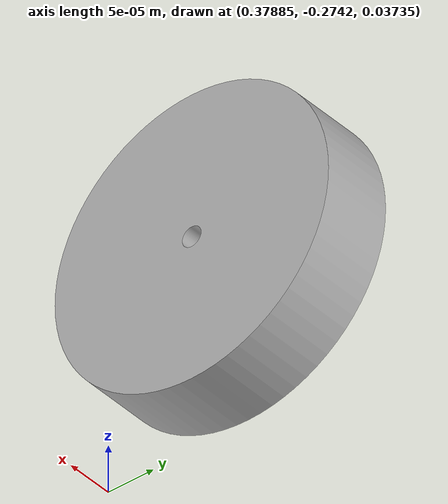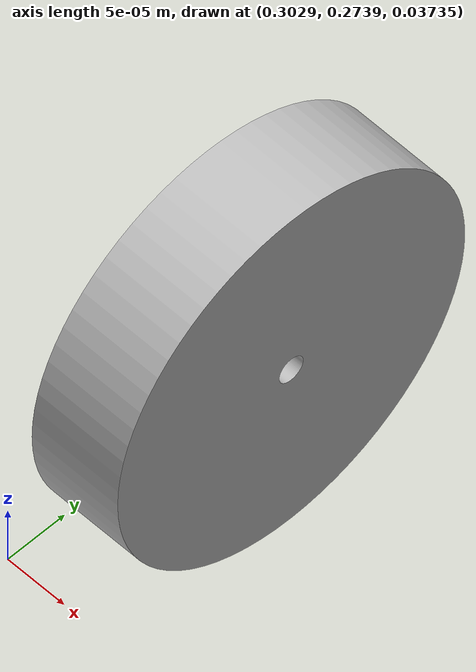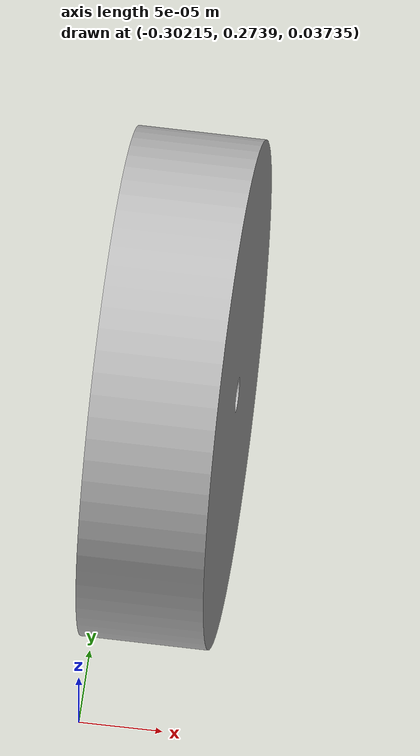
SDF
<?xml version="1.0"?>

<sdf version='1.7'>
  <model name='rover'>
    <link name='wheel_1'>
      <inertial>
        <pose>0 0 0 0 -0 0</pose>
        <mass>0.00629423</mass>
        <inertia>
          <ixx>3.792</ixx>
          <ixy>0</ixy>
          <ixz>0</ixz>
          <iyy>3.792</iyy>
          <iyz>0</iyz>
          <izz>7.071</izz>
        </inertia>
      </inertial>
      <collision name='wheel_1_collision'>
        <pose>-0.302073 -0.274046 0.0375 -1.5708 -1.5708 0</pose>
        <geometry>
          <mesh>
            <scale>0.001 0.001 0.001</scale>
            <uri>model://my_simulations/urdf/wheel_1.stl</uri>
          </mesh>
        </geometry>
      </collision>
      <visual name='wheel_1_visual'>
        <pose>-0.302073 -0.274046 0.0375 -1.5708 -1.5708 0</pose>
        <geometry>
          <mesh>
            <scale>0.001 0.001 0.001</scale>
            <uri>model://my_simulations/urdf/wheel_1.stl</uri>
          </mesh>
        </geometry>
      </visual>
    </link>
    <joint name='wheel4' type='revolute'>
      <pose relative_to='wheel_1'>-0.327073 -0.274046 0.0375 -1.5708 0 1.5708</pose>
      <parent>wheel_1</parent>
      <child>base</child>
      <axis>
        <xyz>0 0 1</xyz>
        <limit>
          <effort>1</effort>
          <velocity>20</velocity>
          <lower>-1e+16</lower>
          <upper>1e+16</upper>
        </limit>
        <dynamics>
          <spring_reference>0</spring_reference>
          <spring_stiffness>0</spring_stiffness>
        </dynamics>
      </axis>
    </joint>
    <link name='base'>
      <pose relative_to='wheel4'>0 0 0 0 -0 0</pose>
      <inertial>
        <pose>-0.078689 -0.050312 -0.146272 0 -0 0</pose>
        <mass>0.279507</mass>
        <inertia>
          <ixx>0.0142664</ixx>
          <ixy>-0.00136778</ixy>
          <ixz>-0.00397658</ixz>
          <iyy>0.0205311</iyy>
          <iyz>-0.00254251</iyz>
          <izz>0.0140138</izz>
        </inertia>
      </inertial>
      <collision name='base_collision'>
        <pose>0.274046 0.0375 -0.327073 1.5708 1.5708 0</pose>
        <geometry>
          <mesh>
            <scale>0.001 0.001 0.001</scale>
            <uri>model://my_simulations/urdf/base.stl</uri>
          </mesh>
        </geometry>
      </collision>
      <collision name='base_fixed_joint_lump__lidar_base_collision_1'>
        <pose>-0.190677 -0.1225 -0.324236 1.57079 -0 0</pose>
        <geometry>
          <mesh>
            <scale>0.001 0.001 0.001</scale>
            <uri>model://my_simulations/urdf/lidar_base.stl</uri>
          </mesh>
        </geometry>
      </collision>
      <visual name='base_visual'>
        <pose>0.274046 0.0375 -0.327073 1.5708 1.5708 0</pose>
        <geometry>
          <mesh>
            <scale>0.001 0.001 0.001</scale>
            <uri>model://my_simulations/urdf/base.stl</uri>
          </mesh>
        </geometry>
      </visual>
      <visual name='base_fixed_joint_lump__lidar_base_visual_1'>
        <pose>-0.190677 -0.1225 -0.324236 1.57079 -0 0</pose>
        <geometry>
          <mesh>
            <scale>0.001 0.001 0.001</scale>
            <uri>model://my_simulations/urdf/lidar_base.stl</uri>
          </mesh>
        </geometry>
      </visual>
    </link>
    <joint name='wheel1' type='revolute'>
      <pose relative_to='base'>0 0 -0.63 3.14159 -0 0</pose>
      <parent>base</parent>
      <child>wheel_1_2</child>
      <axis>
        <xyz>0 0 1</xyz>
        <limit>
          <effort>1</effort>
          <velocity>20</velocity>
          <lower>-1e+16</lower>
          <upper>1e+16</upper>
        </limit>
        <dynamics>
          <spring_reference>0</spring_reference>
          <spring_stiffness>0</spring_stiffness>
        </dynamics>
      </axis>
    </joint>
    <link name='wheel_1_2'>
      <pose relative_to='wheel1'>0 0 0 0 -0 0</pose>
      <inertial>
        <pose>0 0 0 0 -0 0</pose>
        <mass>0.00629423</mass>
        <inertia>
          <ixx>3.792</ixx>
          <ixy>0</ixy>
          <ixz>0</ixz>
          <iyy>3.792</iyy>
          <iyz>0</iyz>
          <izz>7.071</izz>
        </inertia>
      </inertial>
      <collision name='wheel_1_2_collision'>
        <pose>0 0 0.076 1.5708 -0 0</pose>
        <geometry>
          <mesh>
            <scale>0.001 0.001 0.001</scale>
            <uri>model://my_simulations/urdf/wheel_1.stl</uri>
          </mesh>
        </geometry>
      </collision>
      <visual name='wheel_1_2_visual'>
        <pose>0 0 0.076 1.5708 -0 0</pose>
        <geometry>
          <mesh>
            <scale>0.001 0.001 0.001</scale>
            <uri>model://my_simulations/urdf/wheel_1.stl</uri>
          </mesh>
        </geometry>
      </visual>
    </link>
    <joint name='wheel2' type='revolute'>
      <pose relative_to='base'>0.548092 -0 -0.63 0 -0 3.14159</pose>
      <parent>base</parent>
      <child>wheel_1_3</child>
      <axis>
        <xyz>0 0 1</xyz>
        <limit>
          <effort>1</effort>
          <velocity>20</velocity>
          <lower>-1e+16</lower>
          <upper>1e+16</upper>
        </limit>
        <dynamics>
          <spring_reference>0</spring_reference>
          <spring_stiffness>0</spring_stiffness>
        </dynamics>
      </axis>
    </joint>
    <link name='wheel_1_3'>
      <pose relative_to='wheel2'>0 0 0 0 -0 0</pose>
      <inertial>
        <pose>0 0 0 0 -0 0</pose>
        <mass>0.00629423</mass>
        <inertia>
          <ixx>3.792</ixx>
          <ixy>0</ixy>
          <ixz>0</ixz>
          <iyy>3.792</iyy>
          <iyz>0</iyz>
          <izz>7.071</izz>
        </inertia>
      </inertial>
      <collision name='wheel_1_3_collision'>
        <pose>0 0 0 1.5708 -0 0</pose>
        <geometry>
          <mesh>
            <scale>0.001 0.001 0.001</scale>
            <uri>model://my_simulations/urdf/wheel_1.stl</uri>
          </mesh>
        </geometry>
      </collision>
      <visual name='wheel_1_3_visual'>
        <pose>0 0 0 1.5708 -0 0</pose>
        <geometry>
          <mesh>
            <scale>0.001 0.001 0.001</scale>
            <uri>model://my_simulations/urdf/wheel_1.stl</uri>
          </mesh>
        </geometry>
      </visual>
    </link>
    <joint name='wheel3' type='revolute'>
      <pose relative_to='base'>0.548092 0 -0.025 3.14159 -0 -1.5708</pose>
      <parent>base</parent>
      <child>wheel_1_4</child>
      <axis>
        <xyz>0 0 1</xyz>
        <limit>
          <effort>1</effort>
          <velocity>20</velocity>
          <lower>-1e+16</lower>
          <upper>1e+16</upper>
        </limit>
        <dynamics>
          <spring_reference>0</spring_reference>
          <spring_stiffness>0</spring_stiffness>
        </dynamics>
      </axis>
    </joint>
    <link name='wheel_1_4'>
      <pose relative_to='wheel3'>0 0 0 0 -0 0</pose>
      <inertial>
        <pose>0 0 0 0 -0 0</pose>
        <mass>0.00629423</mass>
        <inertia>
          <ixx>3.792</ixx>
          <ixy>0</ixy>
          <ixz>0</ixz>
          <iyy>3.792</iyy>
          <iyz>0</iyz>
          <izz>7.071</izz>
        </inertia>
      </inertial>
      <collision name='wheel_1_4_collision'>
        <pose>0 0 0 1.5708 -0 0</pose>
        <geometry>
          <mesh>
            <scale>0.001 0.001 0.001</scale>
            <uri>model://my_simulations/urdf/wheel_1.stl</uri>
          </mesh>
        </geometry>
      </collision>
      <visual name='wheel_1_4_visual'>
        <pose>0 0 0 1.5708 -0 0</pose>
        <geometry>
          <mesh>
            <scale>0.001 0.001 0.001</scale>
            <uri>model://my_simulations/urdf/wheel_1.stl</uri>
          </mesh>
        </geometry>
      </visual>
    </link>
  </model>
</sdf>
